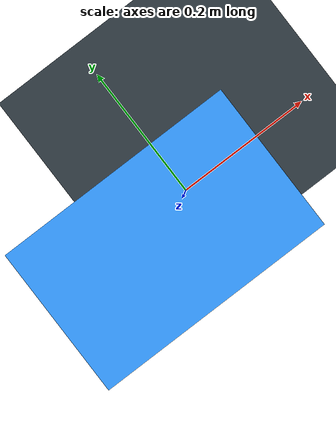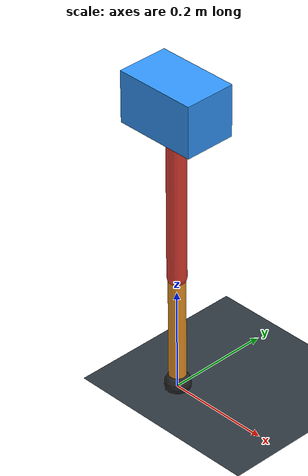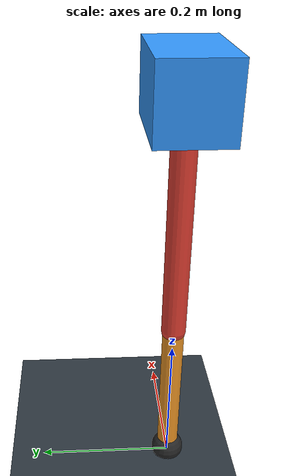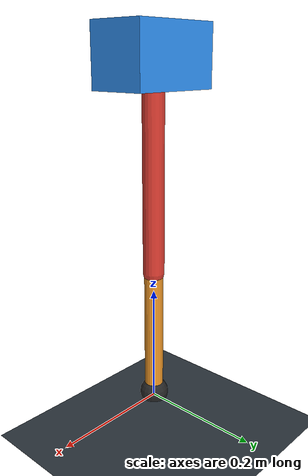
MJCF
<mujoco model="single_axis_two_bar">
  <compiler angle="radian" inertiafromgeom="true"/>
  <option timestep="0.001" integrator="implicitfast" gravity="0 0 -9.81"/>
  <default>
    <joint damping="0.08"/>
    <geom friction="1.2 0.01 0.0001" condim="3"/>
  </default>
  <worldbody>
    <geom name="floor" type="plane" size="5 5 0.1" rgba="0.18 0.22 0.25 1"/>
    <body name="carriage" pos="0 0 0.5826047590046121">
      <joint name="pole_slide" type="slide" axis="0 0 1"/>
      <geom name="payload" type="box" size="0.08 0.05 0.05" mass="2.5253035819609293" rgba="0.2 0.6 1 1"/>
      <body name="thigh" pos="0 0 0">
        <joint name="hip" type="hinge" axis="0 1 0"/>
        <geom name="thigh_link" type="capsule" fromto="0 0 0 0 0 -0.3485378097671702" size="0.018" mass="0.24833779497992728" rgba="0.9 0.25 0.2 1"/>
        <body name="shank" pos="0 0 -0.3485378097671702">
          <joint name="knee" type="hinge" axis="0 1 0"/>
          <geom name="shank_link" type="capsule" fromto="0 0 0 0 0 -0.22631245724789373" size="0.016" mass="0.16125061624440384" rgba="0.95 0.6 0.15 1"/>
          <geom name="foot" type="sphere" pos="0 0 -0.22631245724789373" size="0.025" mass="0.03" rgba="0.15 0.15 0.15 1"/>
          <site name="toe" pos="0 0 -0.22631245724789373" size="0.008"/>
        </body>
      </body>
    </body>
  </worldbody>
  <actuator>
    <motor name="hip_motor" joint="hip" ctrlrange="-21.8948181150283 21.8948181150283"/>
    <motor name="knee_motor" joint="knee" ctrlrange="-105.18802023984843 105.18802023984843"/>
  </actuator>
</mujoco>
